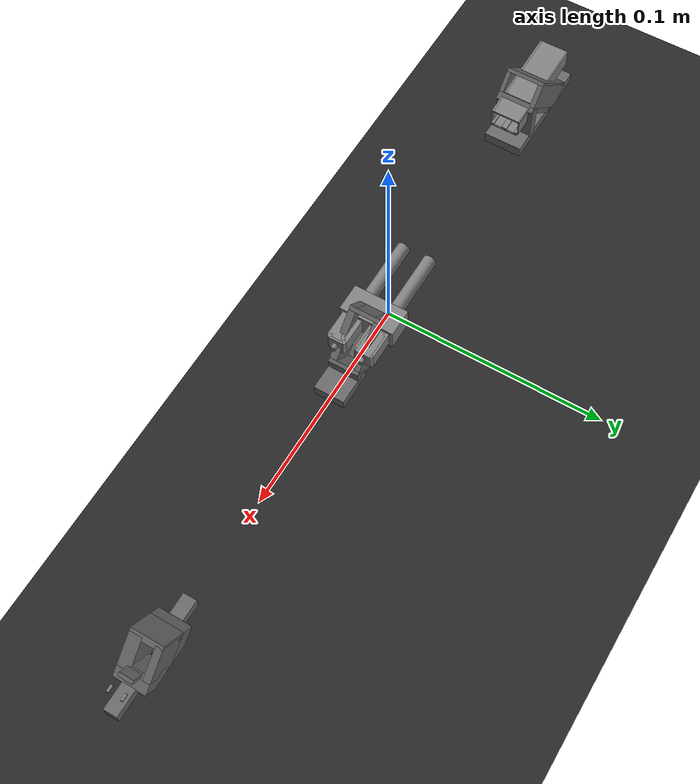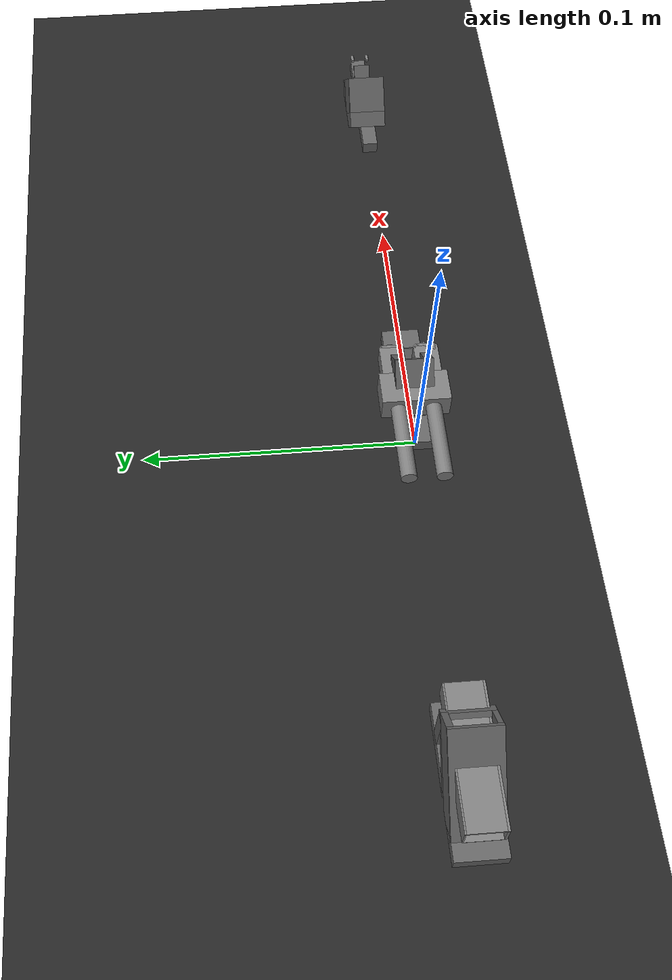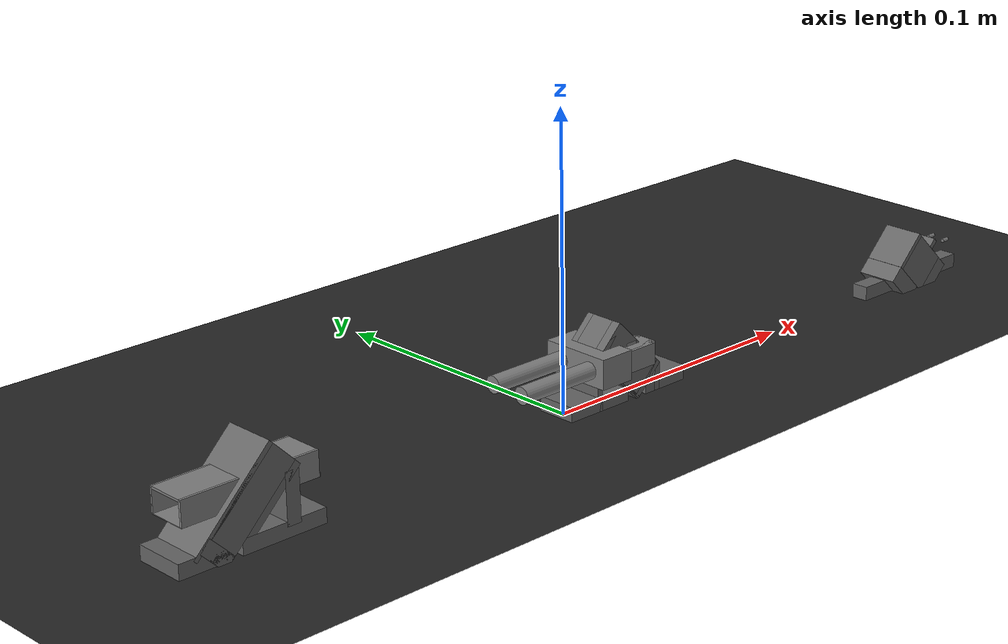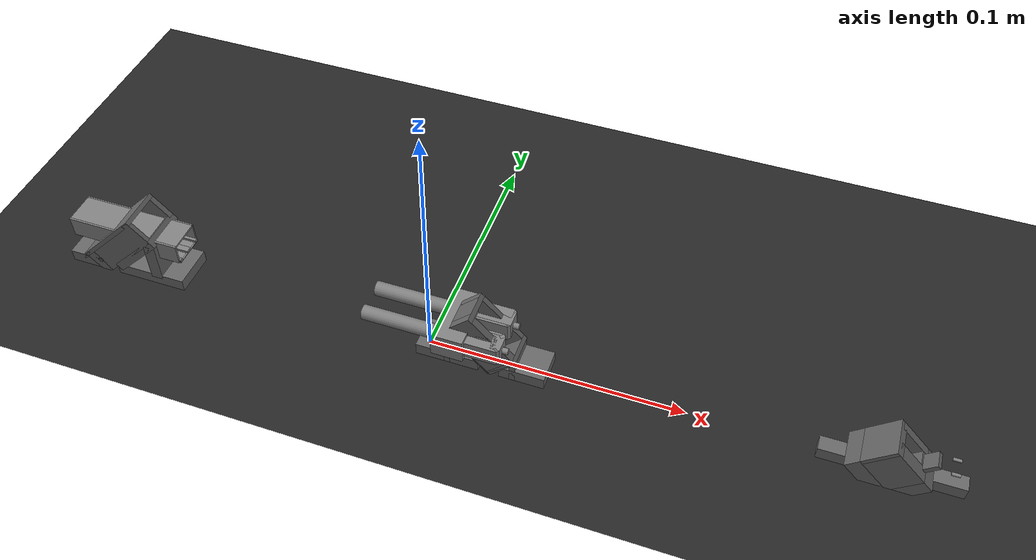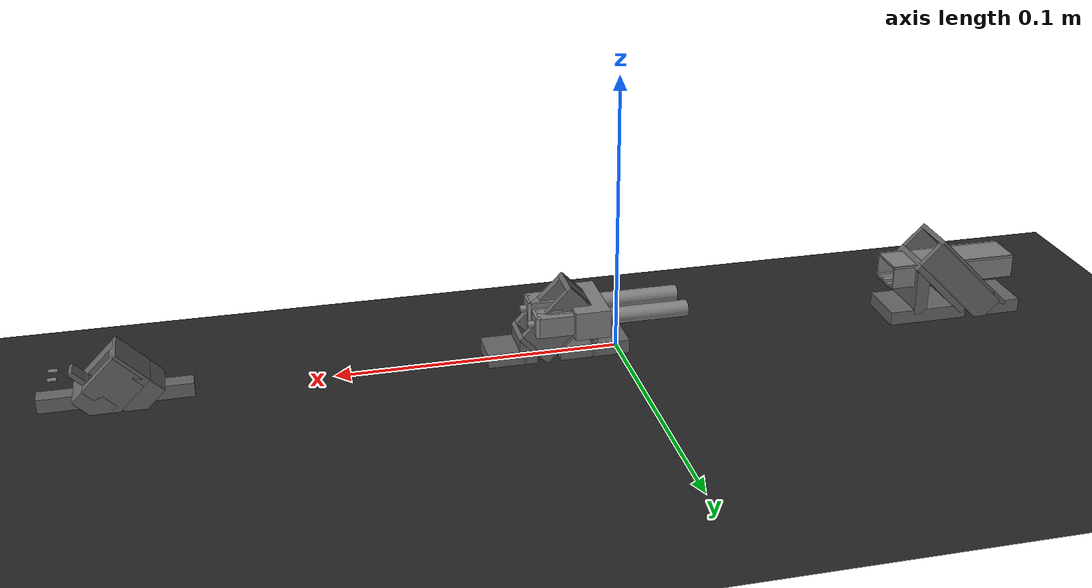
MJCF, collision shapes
<mujoco model="settle_v2">
  <compiler angle="radian" meshdir="/home/starforge-sf/projects/Project-Automaton/References/aic/aic_utils/aic_mujoco/mjcf"/>
  <option gravity="0 0 -9.81" timestep="0.0005">
    <flag contact="enable"/>
  </option>
  <default>
    <geom friction="0.8 0.005 0.005" solref="0.002 1" solimp="0.99 0.999 0.001"/>
    <joint damping="0.5"/>
  </default>

  <visual>
    <headlight ambient="0.3 0.3 0.3" diffuse="0.6 0.6 0.6"/>
  </visual>

  <asset>
    <material name="mat_sc_plug" rgba="0.15 0.4 0.85 1" specular="0.4"/>
    <material name="mat_lc_plug" rgba="0.6 0.6 0.6 1" specular="0.4"/>
    <material name="mat_sfp_0" rgba="0.5 0.5 0.5 1" specular="0.3"/>
    <material name="mat_sfp_1" rgba="0.3 0.3 0.35 1" specular="0.3"/>
    <mesh name="sc_plug_mesh" content_type="model/obj" file="3c8f162873ab26f3c28d587135247b1ab9ef1a18a9d490deb9666be4c03443e6_sc_plug_visual_merged_0-67f94accf247f722dd4954d7448d7956402901f2.obj" inertia="shell"/>
    <mesh name="lc_plug_mesh" content_type="model/obj" file="b9fc682e4820b05cce436c98153fe0a21cf8357a9ca103d5872f530c3a9e2114_lc_plug_visual_merged_0-fdaf59710fc3cc118a7df05add4ff4205edda4ef.obj" inertia="shell"/>
    <mesh name="sfp_mesh_0" content_type="model/obj" file="1c33e96b885803ba8f50d0e401fdc0b85ffce960d08fc167466b66b5712840ce_sfp_module_visual_Body.005-f93147e1e403de321fb70c06a4b1e00f20feb9fd.obj" inertia="shell"/>
    <mesh name="sfp_mesh_1" content_type="model/obj" file="1c33e96b885803ba8f50d0e401fdc0b85ffce960d08fc167466b66b5712840ce_sfp_module_visual_Body.005_1-4af964a95522e2593eb6381eca4f09ef239782c7.obj" inertia="shell"/>
  </asset>

  <worldbody>
    <light pos="0 0 0.5" dir="0 0 -1" diffuse="1 1 1"/>
    <geom type="plane" size="1 1 0.01" rgba="0.15 0.15 0.15 1"/>

    <!-- SFP MOUNT (static, real XACRO collision) -->
    <body name="sfp_mount" pos="-0.15 0 0">
      <geom name="sfp_base" type="box" size="0.014729 0.008875 0.002500" pos="0.033272 0.000000 0.002500" rgba="0.4 0.4 0.4 0.5" group="3"/>
      <geom name="sfp_wall_01" type="box" size="0.019266 0.008875 0.000864" pos="0.016366 0.000000 0.017144" quat="0.923880 0.000000 -0.382683 0.000000" rgba="0.4 0.4 0.4 0.5" group="3"/>
      <geom name="sfp_wall_02" type="box" size="0.013742 0.008875 0.001844" pos="0.028636 0.000000 0.012684" quat="0.923880 0.000000 -0.382683 0.000000" rgba="0.4 0.4 0.4 0.5" group="3"/>
      <geom name="sfp_side_L" type="box" size="0.018055 0.001153 0.005478" pos="0.021242 0.007723 0.013979" quat="0.923880 0.000000 -0.382683 0.000000" rgba="0.4 0.4 0.4 0.5" group="3"/>
      <geom name="sfp_side_R" type="box" size="0.018055 0.000937 0.005815" pos="0.021003 -0.007938 0.014217" quat="0.923880 0.000000 -0.382683 0.000000" rgba="0.4 0.4 0.4 0.5" group="3"/>
      <geom name="sfp_edge_01" type="box" size="0.002532 0.008875 0.005815" pos="0.010017 0.000000 0.003231" quat="0.923880 0.000000 -0.382683 0.000000" rgba="0.4 0.4 0.4 0.5" group="3"/>
      <geom name="sfp_base_02" type="box" size="0.007186 0.008875 0.002500" pos="0.004200 0.000000 0.002500" rgba="0.4 0.4 0.4 0.5" group="3"/>
      <geom name="sfp_top" type="box" size="0.002446 0.008875 0.008377" pos="0.036553 0.000000 0.011771" rgba="0.4 0.4 0.4 0.5" group="3"/>
    </body>

    <!-- SFP MODULE (free) — -90deg Z to align module +Y to mount +X -->
    <body name="sfp_plug" pos="-0.127 0 0.018" quat="0.707107 0 0 -0.707107">
      <freejoint name="sfp_free"/>
      <inertial pos="0.00024115 0.00702224 0.000553372" quat="0.510037 0.497012 -0.483415 0.50907" mass="0.02" diaginertia="3.07513e-06 2.81054e-06 5.69919e-07"/>
      <geom size="0.00071 0.000503 0.0064415" pos="-0.00571 0.018813 -0.003546" quat="0.707107 0.707107 0 0" type="box" group="3"/>
      <geom size="0.00071 0.000503 0.0064415" pos="0.00571 0.018813 -0.003546" quat="0.707107 0.707107 0 0" type="box" group="3"/>
      <geom size="0.006875 0.02365 0.0003945" pos="0 0.001 0.00383" type="box" group="3"/>
      <geom size="0.006875 0.02365 8.9e-05" pos="0 0.001 -0.004138" type="box" group="3"/>
      <geom size="0.000287 0.02365 0.004225" pos="-0.006588 0.001 0" type="box" group="3"/>
      <geom size="0.0004055 0.02365 0.004225" pos="0.00647 0.001 0" type="box" group="3"/>
      <geom size="0.00642 0.0038815 0.0058645" pos="0 0.01229 0.000119" quat="0.707107 0.707107 0 0" type="box" group="3"/>
      <geom size="0.00642 0.0002045 0.0008005" pos="0 0.024453 -0.004254" quat="0.707107 0.707107 0 0" type="box" group="3"/>
      <geom size="0.00125 0.000503 0.0064415" pos="0 0.018813 -0.003546" quat="0.707107 0.707107 0 0" type="box" group="3"/>
      <geom type="mesh" mesh="sfp_mesh_0" material="mat_sfp_0" contype="0" conaffinity="0"/>
      <geom type="mesh" mesh="sfp_mesh_1" material="mat_sfp_1" contype="0" conaffinity="0"/>
    </body>

    <!-- SC MOUNT (static, real XACRO collision) -->
    <body name="sc_mount" pos="0 0 0">
      <geom name="sc_base" type="box" size="0.008873 0.007000 0.002500" pos="0.039002 0.000000 0.002500" rgba="0.4 0.4 0.4 0.5" group="3"/>
      <geom name="sc_wall_L" type="box" size="0.012906 0.001600 0.006900" pos="0.022568 -0.005400 0.013451" quat="0.923880 0.000000 0.382683 0.000000" rgba="0.4 0.4 0.4 0.5" group="3"/>
      <geom name="sc_wall_R" type="box" size="0.012906 0.001150 0.006900" pos="0.022568 0.005850 0.013451" quat="0.923880 0.000000 0.382683 0.000000" rgba="0.4 0.4 0.4 0.5" group="3"/>
      <geom name="sc_edge_01" type="box" size="0.001000 0.007000 0.006900" pos="0.014150 0.000000 0.021870" quat="0.923880 0.000000 0.382683 0.000000" rgba="0.4 0.4 0.4 0.5" group="3"/>
      <geom name="sc_edge_02" type="box" size="0.000921 0.007000 0.006900" pos="0.031064 0.000000 0.004956" quat="0.923880 0.000000 0.382683 0.000000" rgba="0.4 0.4 0.4 0.5" group="3"/>
      <geom name="sc_base_02" type="box" size="0.012479 0.007000 0.002500" pos="0.009506 0.000000 0.002500" rgba="0.4 0.4 0.4 0.5" group="3"/>
      <geom name="sc_mid" type="box" size="0.012906 0.007000 0.000620" pos="0.017774 0.000000 0.008656" quat="0.923880 0.000000 0.382683 0.000000" rgba="0.4 0.4 0.4 0.5" group="3"/>
      <geom name="sc_top" type="box" size="0.001110 0.007000 0.004625" pos="0.035389 0.000000 0.004624" rgba="0.4 0.4 0.4 0.5" group="3"/>
      <geom name="sc_side" type="box" size="0.001045 0.007000 0.008711" pos="0.009545 0.000000 0.008711" rgba="0.4 0.4 0.4 0.5" group="3"/>
    </body>

    <!-- SC PLUG (free) — identity quat, SC long axis is already X -->
    <body name="sc_plug" pos="0.022 0 0.015" quat="1 0 0 0">
      <freejoint name="sc_free"/>
      <inertial pos="-0.00907511 4.9566e-05 8.71699e-06" quat="0.000872542 0.70691 -0.000868656 0.707302" mass="0.04" diaginertia="8.85404e-06 7.17322e-06 2.12253e-06"/>
      <geom size="0.0063605 0.0045 0.00365" pos="0.002038 0.006344 4e-06" type="box" group="3"/>
      <geom size="0.0063605 0.0045 0.00365" pos="0.002038 -0.006344 4e-06" type="box" group="3"/>
      <geom size="0.006861 0.0035 0.00365" pos="0.002539 0.006344 4e-06" type="box" group="3"/>
      <geom size="0.006861 0.0035 0.00365" pos="0.002539 -0.006344 4e-06" type="box" group="3"/>
      <geom size="0.001 0.000705 0.00365" pos="0.008191 0.003056 4e-06" quat="0.92388 0 0 -0.382683" type="box" group="3"/>
      <geom size="0.001 0.000705 0.00365" pos="0.008191 0.009636 4e-06" quat="0.92388 0 0 0.382683" type="box" group="3"/>
      <geom size="0.001 0.000705 0.00365" pos="0.008191 -0.009636 4e-06" quat="0.92388 0 0 -0.382683" type="box" group="3"/>
      <geom size="0.001 0.000705 0.00365" pos="0.008191 -0.003056 4e-06" quat="0.92388 0 0 0.382683" type="box" group="3"/>
      <geom size="0.006275 0.0125 0.00505" pos="-0.010291 0 0" type="box" group="3"/>
      <geom size="0.0029 0.014605" pos="-0.031147 -0.00635 0" quat="0.707107 0 0.707107 0" type="cylinder" group="3"/>
      <geom size="0.0029 0.015799" pos="-0.029953 0.00635 0" quat="0.707107 0 0.707107 0" type="cylinder" group="3"/>
      <geom size="0.00125 0.007" pos="0.00465 -0.00635 0" quat="0.707107 0 0.707107 0" type="cylinder" group="3"/>
      <geom size="0.00125 0.007" pos="0.00465 0.00635 0" quat="0.707107 0 0.707107 0" type="cylinder" group="3"/>
      <geom size="0.002125 0.00081 0.0005" pos="0.00146 -0.00632 0.0042" type="box" group="3"/>
      <geom size="0.002125 0.00081 0.0005" pos="0.00146 0.00632 0.0042" type="box" group="3"/>
      <geom type="mesh" mesh="sc_plug_mesh" material="mat_sc_plug" contype="0" conaffinity="0"/>
    </body>

    <!-- LC MOUNT (static, real XACRO collision) -->
    <body name="lc_mount" pos="0.15 0 0">
      <geom name="lc_base" type="box" size="0.008516 0.003000 0.002500" pos="0.039468 0.000000 0.002500" rgba="0.4 0.4 0.4 0.5" group="3"/>
      <geom name="lc_base_02" type="box" size="0.009284 0.003000 0.002500" pos="0.006285 0.000000 0.002500" rgba="0.4 0.4 0.4 0.5" group="3"/>
      <geom name="lc_wall_01" type="box" size="0.007135 0.007375 0.001527" pos="0.016889 0.000000 0.014186" quat="0.923880 0.000000 -0.382683 0.000000" rgba="0.4 0.4 0.4 0.5" group="3"/>
      <geom name="lc_wall_02" type="box" size="0.006051 0.007375 0.003999" pos="0.029227 0.000000 0.003364" quat="0.923880 0.000000 -0.382683 0.000000" rgba="0.4 0.4 0.4 0.5" group="3"/>
      <geom name="lc_wall_03" type="box" size="0.003128 0.007375 0.006920" pos="0.013496 0.000000 0.003079" quat="0.923880 0.000000 -0.382683 0.000000" rgba="0.4 0.4 0.4 0.5" group="3"/>
      <geom name="lc_side_R" type="box" size="0.007135 0.001625 0.007801" pos="0.022239 0.005750 0.008836" quat="0.923880 0.000000 -0.382683 0.000000" rgba="0.4 0.4 0.4 0.5" group="3"/>
      <geom name="lc_side_L" type="box" size="0.007135 0.002863 0.007633" pos="0.022270 -0.004513 0.008805" quat="0.923880 0.000000 -0.382683 0.000000" rgba="0.4 0.4 0.4 0.5" group="3"/>
      <geom name="lc_top" type="box" size="0.004521 0.003250 0.000902" pos="0.032739 0.000000 0.010179" quat="0.923880 0.000000 -0.382683 0.000000" rgba="0.4 0.4 0.4 0.5" group="3"/>
    </body>

    <!-- LC PLUG (free) — -90deg Z for ferrule alignment -->
    <body name="lc_plug" pos="0.172 0 0.012" quat="0.707107 0 0 -0.707107">
      <freejoint name="lc_free"/>
      <inertial pos="0 0.0197 0" quat="0 0.707107 0 0.707107" mass="0.01" diaginertia="1.06153e-07 9.96094e-08 8.49658e-09"/>
      <geom size="0.000625 0.001502" pos="0.003125 0.0197 0" quat="0.707107 0.707107 0 0" type="cylinder" group="3"/>
      <geom size="0.000625 0.001502" pos="-0.003125 0.0197 0" quat="0.707107 0.707107 0 0" type="cylinder" group="3"/>
      <geom type="mesh" mesh="lc_plug_mesh" material="mat_lc_plug" contype="0" conaffinity="0"/>
    </body>
  </worldbody>
</mujoco>
